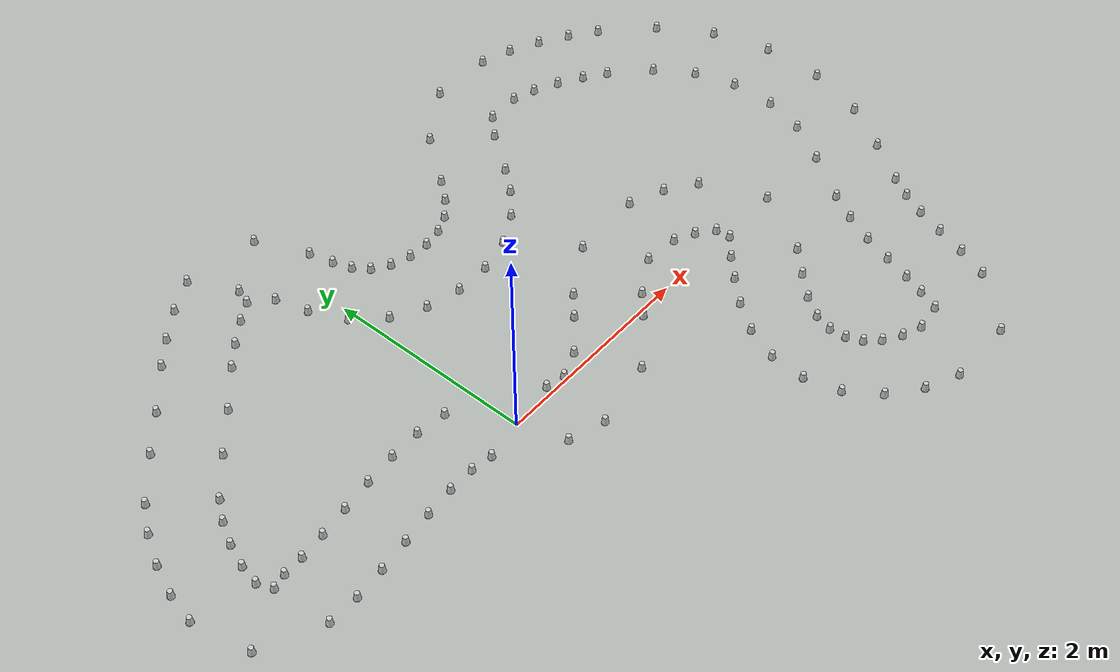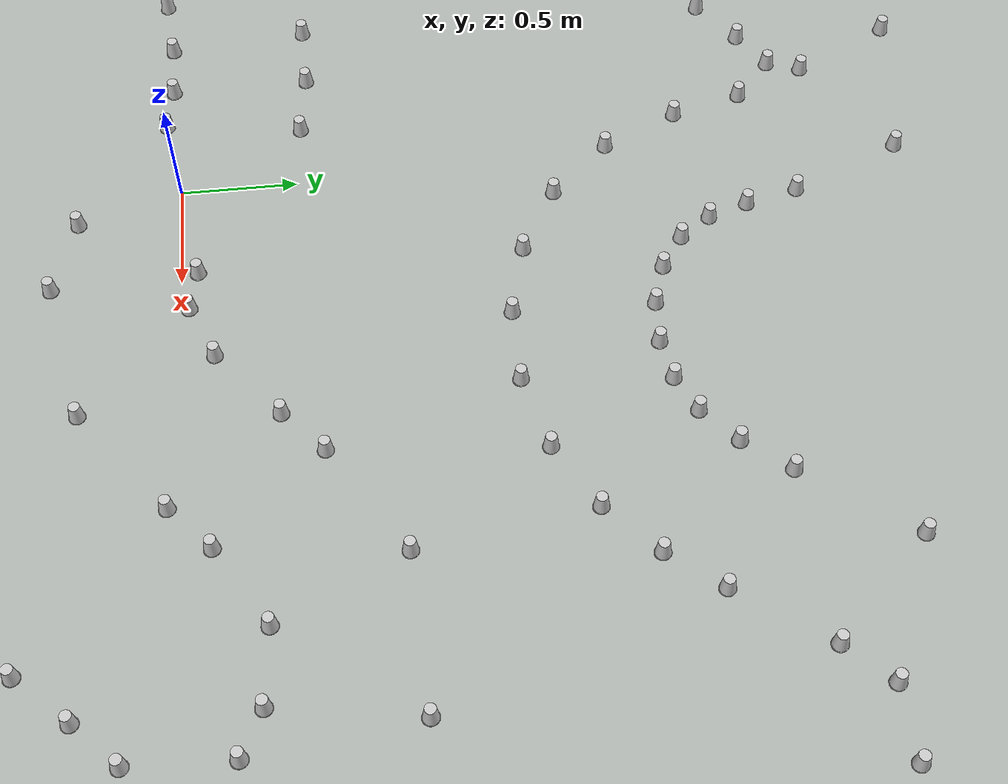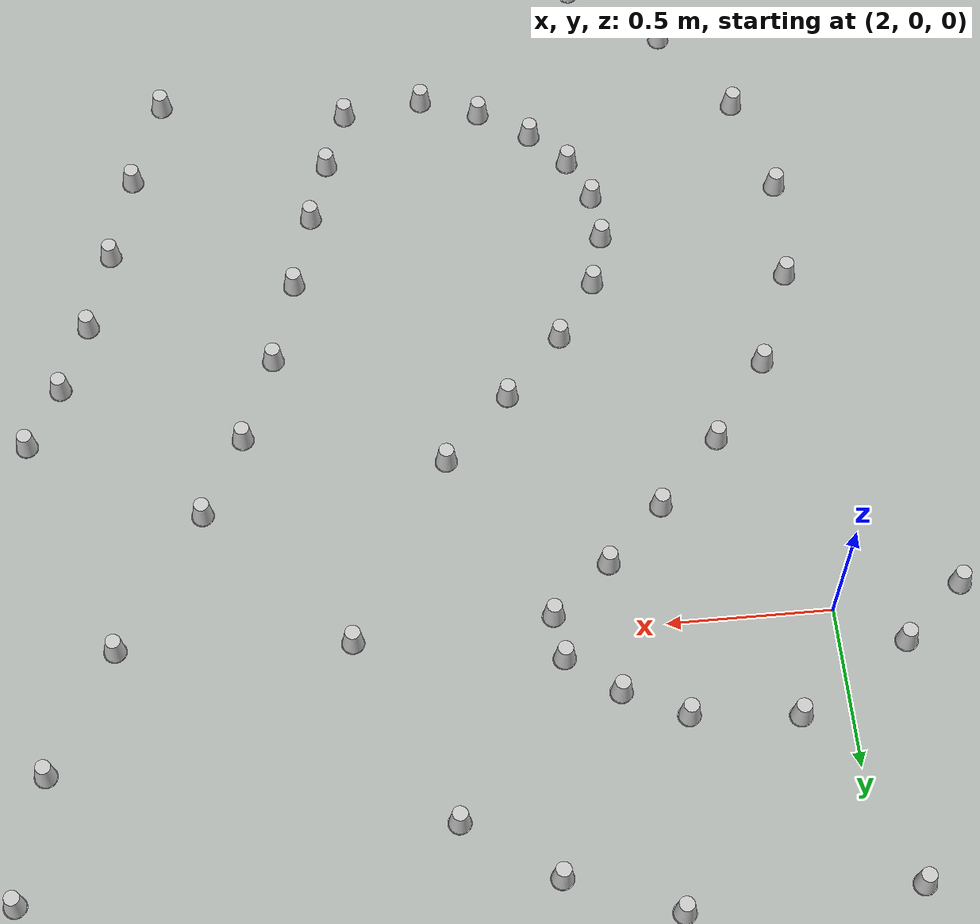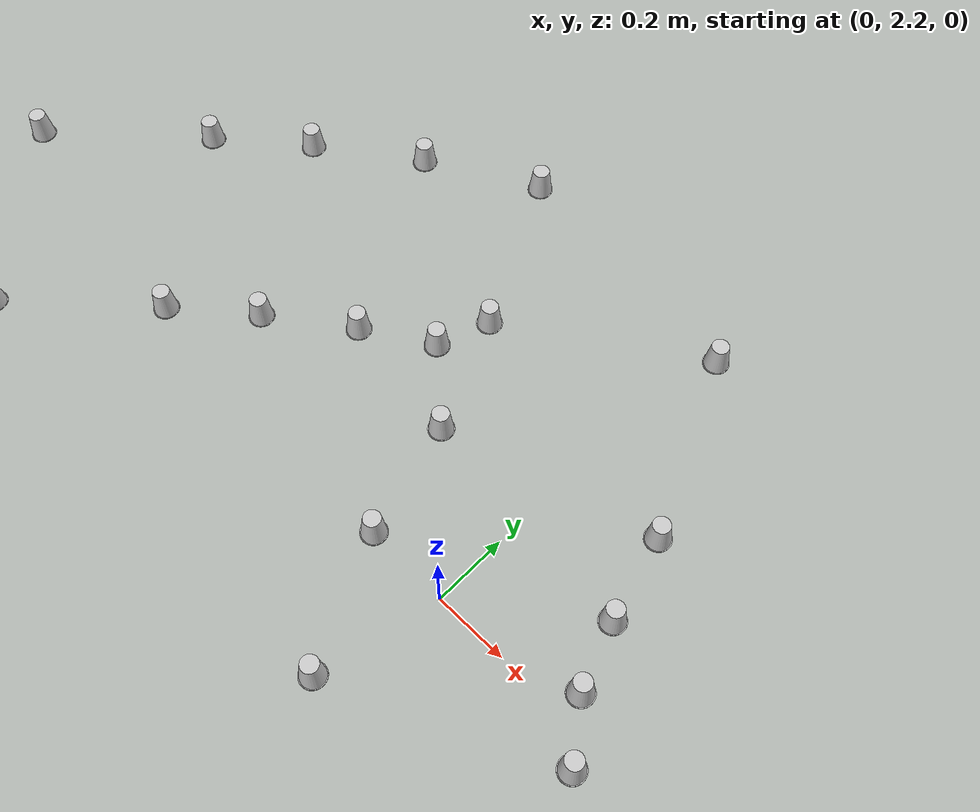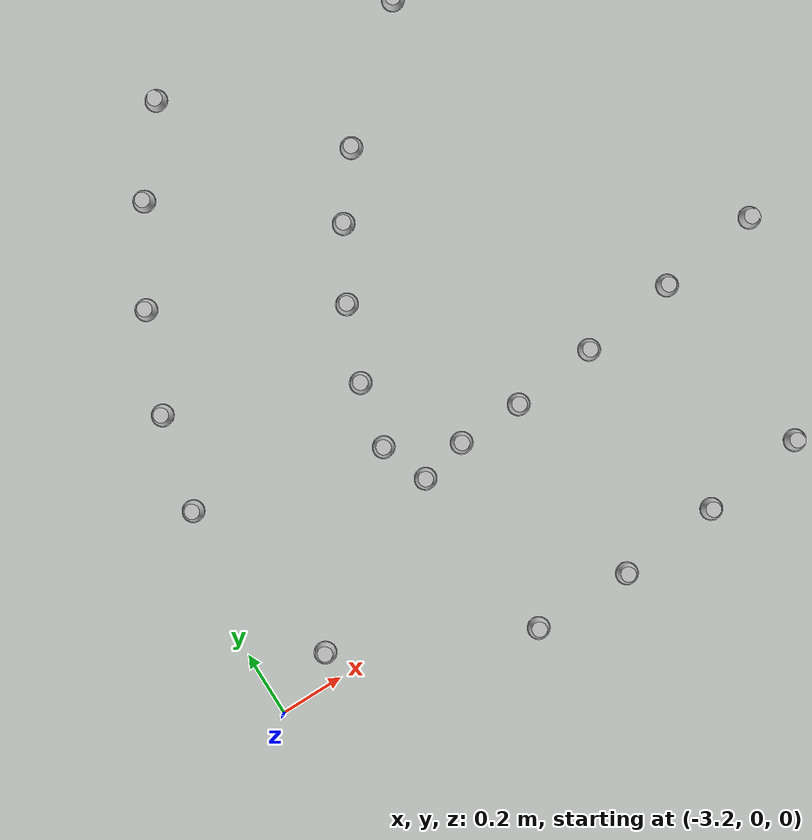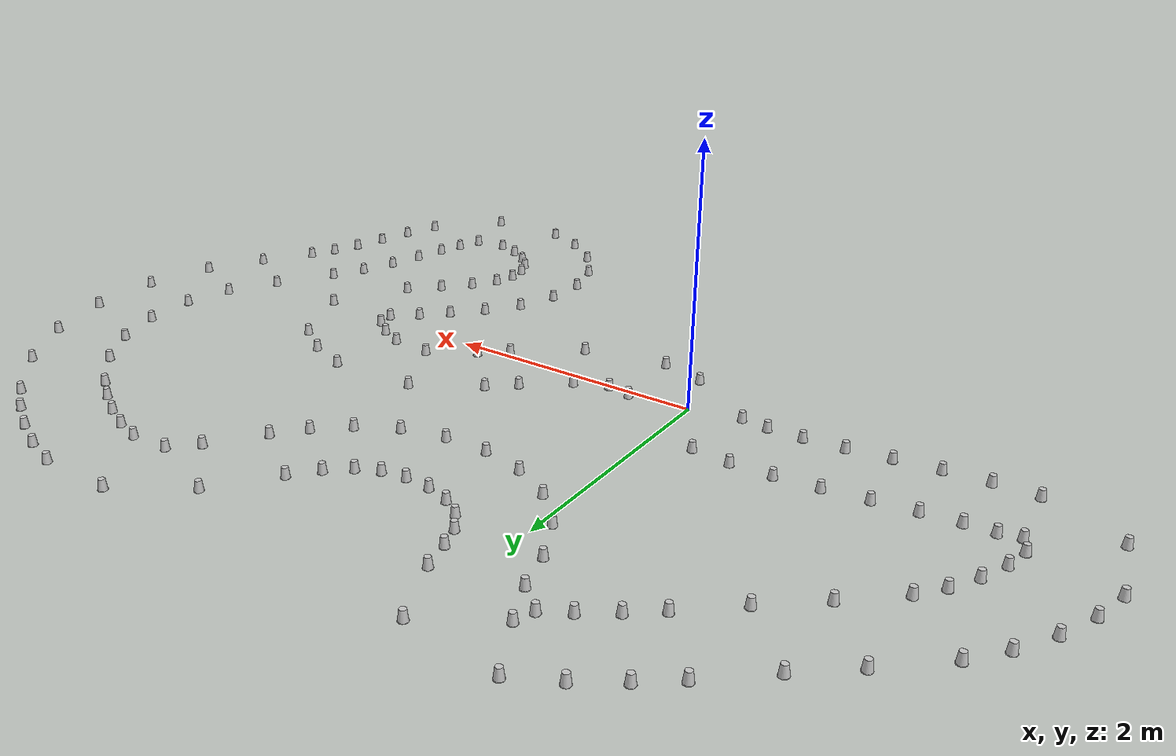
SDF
<?xml version='1.0' encoding='UTF-8'?>
<sdf version="1.4">
  <model name="some track">
    <include>
      <uri>model://cone_yellow</uri>
      <pose>0.1489336183060824 -0.44300287853696574 0 0 0 0</pose>
      <name>cone_right_0</name>
    </include>
    <include>
      <uri>model://cone_yellow</uri>
      <pose>0.4961058259654692 -0.5475535411759783 0 0 0 0</pose>
      <name>cone_right_1</name>
    </include>
    <include>
      <uri>model://cone_yellow</uri>
      <pose>1.143389940291274 -0.41314071276345354 0 0 0 0</pose>
      <name>cone_right_2</name>
    </include>
    <include>
      <uri>model://cone_yellow</uri>
      <pose>1.6082141276221864 -0.05322173094856836 0 0 0 0</pose>
      <name>cone_right_3</name>
    </include>
    <include>
      <uri>model://cone_yellow</uri>
      <pose>1.8004159025532567 0.11803156032722686 0 0 0 0</pose>
      <name>cone_right_4</name>
    </include>
    <include>
      <uri>model://cone_yellow</uri>
      <pose>2.1482045290976117 0.3281635064460478 0 0 0 0</pose>
      <name>cone_right_5</name>
    </include>
    <include>
      <uri>model://cone_yellow</uri>
      <pose>2.4719852008696024 0.2977196626529633 0 0 0 0</pose>
      <name>cone_right_6</name>
    </include>
    <include>
      <uri>model://cone_yellow</uri>
      <pose>2.659545496556401 0.2072793361485376 0 0 0 0</pose>
      <name>cone_right_7</name>
    </include>
    <include>
      <uri>model://cone_yellow</uri>
      <pose>2.812567849398796 0.08466833445198363 0 0 0 0</pose>
      <name>cone_right_8</name>
    </include>
    <include>
      <uri>model://cone_yellow</uri>
      <pose>2.829410620428896 -0.054709885694480535 0 0 0 0</pose>
      <name>cone_right_9</name>
    </include>
    <include>
      <uri>model://cone_yellow</uri>
      <pose>2.6450896221451763 -0.2119712804292854 0 0 0 0</pose>
      <name>cone_right_10</name>
    </include>
    <include>
      <uri>model://cone_yellow</uri>
      <pose>2.4631346648143655 -0.3924107468708467 0 0 0 0</pose>
      <name>cone_right_11</name>
    </include>
    <include>
      <uri>model://cone_yellow</uri>
      <pose>2.261539616022338 -0.6092099492027743 0 0 0 0</pose>
      <name>cone_right_12</name>
    </include>
    <include>
      <uri>model://cone_yellow</uri>
      <pose>2.0791331525641312 -0.8689175100532496 0 0 0 0</pose>
      <name>cone_right_13</name>
    </include>
    <include>
      <uri>model://cone_yellow</uri>
      <pose>1.9584969333145956 -1.1857725263795265 0 0 0 0</pose>
      <name>cone_right_14</name>
    </include>
    <include>
      <uri>model://cone_yellow</uri>
      <pose>1.93836008617517 -1.5297882584963889 0 0 0 0</pose>
      <name>cone_right_15</name>
    </include>
    <include>
      <uri>model://cone_yellow</uri>
      <pose>2.0299808322788264 -1.865438898609131 0 0 0 0</pose>
      <name>cone_right_16</name>
    </include>
    <include>
      <uri>model://cone_yellow</uri>
      <pose>2.233735734013372 -2.162673669375936 0 0 0 0</pose>
      <name>cone_right_17</name>
    </include>
    <include>
      <uri>model://cone_yellow</uri>
      <pose>2.5140119469291746 -2.3855293772590107 0 0 0 0</pose>
      <name>cone_right_18</name>
    </include>
    <include>
      <uri>model://cone_yellow</uri>
      <pose>2.8252043664206097 -2.5249795685237855 0 0 0 0</pose>
      <name>cone_right_19</name>
    </include>
    <include>
      <uri>model://cone_yellow</uri>
      <pose>3.464534024378212 -2.5160900270946964 0 0 0 0</pose>
      <name>cone_right_20</name>
    </include>
    <include>
      <uri>model://cone_yellow</uri>
      <pose>3.9132222028055033 -2.0261816710607063 0 0 0 0</pose>
      <name>cone_right_21</name>
    </include>
    <include>
      <uri>model://cone_yellow</uri>
      <pose>4.018035063090451 -1.7341791673116578 0 0 0 0</pose>
      <name>cone_right_22</name>
    </include>
    <include>
      <uri>model://cone_yellow</uri>
      <pose>4.098568054624938 -1.4491607143392524 0 0 0 0</pose>
      <name>cone_right_23</name>
    </include>
    <include>
      <uri>model://cone_yellow</uri>
      <pose>4.1780107869248635 -1.186826801697169 0 0 0 0</pose>
      <name>cone_right_24</name>
    </include>
    <include>
      <uri>model://cone_yellow</uri>
      <pose>4.269759827451156 -0.9660469356231087 0 0 0 0</pose>
      <name>cone_right_25</name>
    </include>
    <include>
      <uri>model://cone_yellow</uri>
      <pose>4.377039143867677 -0.7722904045049392 0 0 0 0</pose>
      <name>cone_right_26</name>
    </include>
    <include>
      <uri>model://cone_yellow</uri>
      <pose>4.627654830196301 -0.3888375269489559 0 0 0 0</pose>
      <name>cone_right_27</name>
    </include>
    <include>
      <uri>model://cone_yellow</uri>
      <pose>4.8743602125586 0.049470663569166906 0 0 0 0</pose>
      <name>cone_right_28</name>
    </include>
    <include>
      <uri>model://cone_yellow</uri>
      <pose>5.022041420340208 0.5952909064174535 0 0 0 0</pose>
      <name>cone_right_29</name>
    </include>
    <include>
      <uri>model://cone_yellow</uri>
      <pose>5.014222335812829 1.1697516215082069 0 0 0 0</pose>
      <name>cone_right_30</name>
    </include>
    <include>
      <uri>model://cone_yellow</uri>
      <pose>4.855803686270274 1.7101553811873746 0 0 0 0</pose>
      <name>cone_right_31</name>
    </include>
    <include>
      <uri>model://cone_yellow</uri>
      <pose>4.561304062637314 2.1857331319153213 0 0 0 0</pose>
      <name>cone_right_32</name>
    </include>
    <include>
      <uri>model://cone_yellow</uri>
      <pose>4.15653192658561 2.589136012595928 0 0 0 0</pose>
      <name>cone_right_33</name>
    </include>
    <include>
      <uri>model://cone_yellow</uri>
      <pose>3.920216375320221 2.7647983191233707 0 0 0 0</pose>
      <name>cone_right_34</name>
    </include>
    <include>
      <uri>model://cone_yellow</uri>
      <pose>3.664799047632815 2.9231939947591865 0 0 0 0</pose>
      <name>cone_right_35</name>
    </include>
    <include>
      <uri>model://cone_yellow</uri>
      <pose>3.394012451091313 3.057591452650709 0 0 0 0</pose>
      <name>cone_right_36</name>
    </include>
    <include>
      <uri>model://cone_yellow</uri>
      <pose>3.1126426830922376 3.156008139487125 0 0 0 0</pose>
      <name>cone_right_37</name>
    </include>
    <include>
      <uri>model://cone_yellow</uri>
      <pose>2.5266615233403504 3.1744840758729125 0 0 0 0</pose>
      <name>cone_right_38</name>
    </include>
    <include>
      <uri>model://cone_yellow</uri>
      <pose>2.010442761039095 2.828196702928457 0 0 0 0</pose>
      <name>cone_right_39</name>
    </include>
    <include>
      <uri>model://cone_yellow</uri>
      <pose>1.6783106127530223 2.383162259085812 0 0 0 0</pose>
      <name>cone_right_40</name>
    </include>
    <include>
      <uri>model://cone_yellow</uri>
      <pose>1.5248911421129703 2.1959174062796123 0 0 0 0</pose>
      <name>cone_right_41</name>
    </include>
    <include>
      <uri>model://cone_yellow</uri>
      <pose>1.3660452083004153 2.0588103827152073 0 0 0 0</pose>
      <name>cone_right_42</name>
    </include>
    <include>
      <uri>model://cone_yellow</uri>
      <pose>1.1991364917680107 1.983170483736218 0 0 0 0</pose>
      <name>cone_right_43</name>
    </include>
    <include>
      <uri>model://cone_yellow</uri>
      <pose>1.0138923557239221 1.9535644304571245 0 0 0 0</pose>
      <name>cone_right_44</name>
    </include>
    <include>
      <uri>model://cone_yellow</uri>
      <pose>0.8157801350424867 1.9668990147994365 0 0 0 0</pose>
      <name>cone_right_45</name>
    </include>
    <include>
      <uri>model://cone_yellow</uri>
      <pose>0.6293345010666918 2.026543169502637 0 0 0 0</pose>
      <name>cone_right_46</name>
    </include>
    <include>
      <uri>model://cone_yellow</uri>
      <pose>0.4785499684934528 2.1289558024850295 0 0 0 0</pose>
      <name>cone_right_47</name>
    </include>
    <include>
      <uri>model://cone_yellow</uri>
      <pose>0.3798200076577434 2.2661756594616134 0 0 0 0</pose>
      <name>cone_right_48</name>
    </include>
    <include>
      <uri>model://cone_yellow</uri>
      <pose>0.32044221759942015 2.441938430869973 0 0 0 0</pose>
      <name>cone_right_49</name>
    </include>
    <include>
      <uri>model://cone_yellow</uri>
      <pose>0.2623761882179354 2.6716046899462182 0 0 0 0</pose>
      <name>cone_right_50</name>
    </include>
    <include>
      <uri>model://cone_yellow</uri>
      <pose>0.05061904224355557 3.1561497723689786 0 0 0 0</pose>
      <name>cone_right_51</name>
    </include>
    <include>
      <uri>model://cone_yellow</uri>
      <pose>-0.6701420826647259 3.2598189202063232 0 0 0 0</pose>
      <name>cone_right_52</name>
    </include>
    <include>
      <uri>model://cone_yellow</uri>
      <pose>-0.9754652003140472 3.0994794236229457 0 0 0 0</pose>
      <name>cone_right_53</name>
    </include>
    <include>
      <uri>model://cone_yellow</uri>
      <pose>-1.245986022269268 2.910699342916729 0 0 0 0</pose>
      <name>cone_right_54</name>
    </include>
    <include>
      <uri>model://cone_yellow</uri>
      <pose>-1.477463758198162 2.7242773058116887 0 0 0 0</pose>
      <name>cone_right_55</name>
    </include>
    <include>
      <uri>model://cone_yellow</uri>
      <pose>-1.850462171199395 2.389045385256523 0 0 0 0</pose>
      <name>cone_right_56</name>
    </include>
    <include>
      <uri>model://cone_yellow</uri>
      <pose>-2.1849619871115773 2.1025829721194063 0 0 0 0</pose>
      <name>cone_right_57</name>
    </include>
    <include>
      <uri>model://cone_yellow</uri>
      <pose>-2.5621591308608673 1.7569256180275958 0 0 0 0</pose>
      <name>cone_right_58</name>
    </include>
    <include>
      <uri>model://cone_yellow</uri>
      <pose>-2.751502025673898 1.5197000656193125 0 0 0 0</pose>
      <name>cone_right_59</name>
    </include>
    <include>
      <uri>model://cone_yellow</uri>
      <pose>-2.9169635526407993 1.2403663921318198 0 0 0 0</pose>
      <name>cone_right_60</name>
    </include>
    <include>
      <uri>model://cone_yellow</uri>
      <pose>-3.0411661676113586 0.946798138425206 0 0 0 0</pose>
      <name>cone_right_61</name>
    </include>
    <include>
      <uri>model://cone_yellow</uri>
      <pose>-3.1134660624931207 0.6549686607328007 0 0 0 0</pose>
      <name>cone_right_62</name>
    </include>
    <include>
      <uri>model://cone_yellow</uri>
      <pose>-3.0004310747995735 0.08737273432990295 0 0 0 0</pose>
      <name>cone_right_63</name>
    </include>
    <include>
      <uri>model://cone_yellow</uri>
      <pose>-2.4197867869377956 -0.18558733563891414 0 0 0 0</pose>
      <name>cone_right_64</name>
    </include>
    <include>
      <uri>model://cone_yellow</uri>
      <pose>-2.1094552380465235 -0.1853718506617037 0 0 0 0</pose>
      <name>cone_right_65</name>
    </include>
    <include>
      <uri>model://cone_yellow</uri>
      <pose>-1.7932557812733294 -0.15436390553005175 0 0 0 0</pose>
      <name>cone_right_66</name>
    </include>
    <include>
      <uri>model://cone_yellow</uri>
      <pose>-1.4731474902093344 -0.11080089493017481 0 0 0 0</pose>
      <name>cone_right_67</name>
    </include>
    <include>
      <uri>model://cone_yellow</uri>
      <pose>-1.1580732380460685 -0.06839491599028863 0 0 0 0</pose>
      <name>cone_right_68</name>
    </include>
    <include>
      <uri>model://cone_yellow</uri>
      <pose>-0.8608900658670848 -0.039703682886665814 0 0 0 0</pose>
      <name>cone_right_69</name>
    </include>
    <include>
      <uri>model://cone_yellow</uri>
      <pose>-0.5976723555438991 -0.03630563014765681 0 0 0 0</pose>
      <name>cone_right_70</name>
    </include>
    <include>
      <uri>model://cone_yellow</uri>
      <pose>-0.3885750777540149 -0.06691995059412884 0 0 0 0</pose>
      <name>cone_right_71</name>
    </include>
    <include>
      <uri>model://cone_blue</uri>
      <pose>0.46229635602922725 0.06866478177259053 0 0 0 0</pose>
      <name>cone_left_0</name>
    </include>
    <include>
      <uri>model://cone_blue</uri>
      <pose>0.6488859623974419 0.032669028112590315 0 0 0 0</pose>
      <name>cone_left_1</name>
    </include>
    <include>
      <uri>model://cone_blue</uri>
      <pose>0.8995664969080154 0.1350838110009717 0 0 0 0</pose>
      <name>cone_left_2</name>
    </include>
    <include>
      <uri>model://cone_blue</uri>
      <pose>1.211370822295549 0.3967953698569778 0 0 0 0</pose>
      <name>cone_left_3</name>
    </include>
    <include>
      <uri>model://cone_blue</uri>
      <pose>1.4012606912446648 0.5659993239946511 0 0 0 0</pose>
      <name>cone_left_4</name>
    </include>
    <include>
      <uri>model://cone_blue</uri>
      <pose>1.8837670046329844 0.8667475719873705 0 0 0 0</pose>
      <name>cone_left_5</name>
    </include>
    <include>
      <uri>model://cone_blue</uri>
      <pose>2.5682627490539045 0.8899448172315403 0 0 0 0</pose>
      <name>cone_left_6</name>
    </include>
    <include>
      <uri>model://cone_blue</uri>
      <pose>2.896638448634202 0.7584480327152361 0 0 0 0</pose>
      <name>cone_left_7</name>
    </include>
    <include>
      <uri>model://cone_blue</uri>
      <pose>3.168703905968402 0.5675421370247163 0 0 0 0</pose>
      <name>cone_left_8</name>
    </include>
    <include>
      <uri>model://cone_blue</uri>
      <pose>3.4284783266507413 -0.021275122915353682 0 0 0 0</pose>
      <name>cone_left_9</name>
    </include>
    <include>
      <uri>model://cone_blue</uri>
      <pose>3.0975903251720696 -0.6059803079402892 0 0 0 0</pose>
      <name>cone_left_10</name>
    </include>
    <include>
      <uri>model://cone_blue</uri>
      <pose>2.8868503020585825 -0.8172225390267693 0 0 0 0</pose>
      <name>cone_left_11</name>
    </include>
    <include>
      <uri>model://cone_blue</uri>
      <pose>2.70123559658448 -1.017459192530299 0 0 0 0</pose>
      <name>cone_left_12</name>
    </include>
    <include>
      <uri>model://cone_blue</uri>
      <pose>2.5735766918699023 -1.2088080607291727 0 0 0 0</pose>
      <name>cone_left_13</name>
    </include>
    <include>
      <uri>model://cone_blue</uri>
      <pose>2.525817572031623 -1.3810858461652094 0 0 0 0</pose>
      <name>cone_left_14</name>
    </include>
    <include>
      <uri>model://cone_blue</uri>
      <pose>2.5382901359668772 -1.5389498826383898 0 0 0 0</pose>
      <name>cone_left_15</name>
    </include>
    <include>
      <uri>model://cone_blue</uri>
      <pose>2.600949046212679 -1.6810607581553707 0 0 0 0</pose>
      <name>cone_left_16</name>
    </include>
    <include>
      <uri>model://cone_blue</uri>
      <pose>2.7124099668221353 -1.8009127278068637 0 0 0 0</pose>
      <name>cone_left_17</name>
    </include>
    <include>
      <uri>model://cone_blue</uri>
      <pose>2.8712491026061957 -1.9034696147774364 0 0 0 0</pose>
      <name>cone_left_18</name>
    </include>
    <include>
      <uri>model://cone_blue</uri>
      <pose>3.0564317674409036 -1.9713245414379656 0 0 0 0</pose>
      <name>cone_left_19</name>
    </include>
    <include>
      <uri>model://cone_blue</uri>
      <pose>3.312186918372557 -1.935753608030976 0 0 0 0</pose>
      <name>cone_left_20</name>
    </include>
    <include>
      <uri>model://cone_blue</uri>
      <pose>3.385466511432841 -1.7407452854618084 0 0 0 0</pose>
      <name>cone_left_21</name>
    </include>
    <include>
      <uri>model://cone_blue</uri>
      <pose>3.4507251843415747 -1.5388345961714938 0 0 0 0</pose>
      <name>cone_left_22</name>
    </include>
    <include>
      <uri>model://cone_blue</uri>
      <pose>3.520897587266747 -1.2869977372385304 0 0 0 0</pose>
      <name>cone_left_23</name>
    </include>
    <include>
      <uri>model://cone_blue</uri>
      <pose>3.6037256829169837 -1.0130550568286232 0 0 0 0</pose>
      <name>cone_left_24</name>
    </include>
    <include>
      <uri>model://cone_blue</uri>
      <pose>3.71441916149909 -0.7388977671458385 0 0 0 0</pose>
      <name>cone_left_25</name>
    </include>
    <include>
      <uri>model://cone_blue</uri>
      <pose>3.84979486332235 -0.4859104669530198 0 0 0 0</pose>
      <name>cone_left_26</name>
    </include>
    <include>
      <uri>model://cone_blue</uri>
      <pose>4.128195623139135 -0.056361211272445894 0 0 0 0</pose>
      <name>cone_left_27</name>
    </include>
    <include>
      <uri>model://cone_blue</uri>
      <pose>4.338786106956456 0.31995241417068687 0 0 0 0</pose>
      <name>cone_left_28</name>
    </include>
    <include>
      <uri>model://cone_blue</uri>
      <pose>4.431694829268985 0.7024865332433045 0 0 0 0</pose>
      <name>cone_left_29</name>
    </include>
    <include>
      <uri>model://cone_blue</uri>
      <pose>4.416611880610339 1.1162563522531332 0 0 0 0</pose>
      <name>cone_left_30</name>
    </include>
    <include>
      <uri>model://cone_blue</uri>
      <pose>4.29543990265919 1.4956969236319055 0 0 0 0</pose>
      <name>cone_left_31</name>
    </include>
    <include>
      <uri>model://cone_blue</uri>
      <pose>4.075242920984486 1.833959672747137 0 0 0 0</pose>
      <name>cone_left_32</name>
    </include>
    <include>
      <uri>model://cone_blue</uri>
      <pose>3.7580315676228544 2.140585609735163 0 0 0 0</pose>
      <name>cone_left_33</name>
    </include>
    <include>
      <uri>model://cone_blue</uri>
      <pose>3.564324294845785 2.2817446709065528 0 0 0 0</pose>
      <name>cone_left_34</name>
    </include>
    <include>
      <uri>model://cone_blue</uri>
      <pose>3.3503501963413957 2.412193094641088 0 0 0 0</pose>
      <name>cone_left_35</name>
    </include>
    <include>
      <uri>model://cone_blue</uri>
      <pose>3.1296972415337225 2.5189473493723686 0 0 0 0</pose>
      <name>cone_left_36</name>
    </include>
    <include>
      <uri>model://cone_blue</uri>
      <pose>2.91920970945136 2.5880436294088565 0 0 0 0</pose>
      <name>cone_left_37</name>
    </include>
    <include>
      <uri>model://cone_blue</uri>
      <pose>2.606769491961475 2.5798558614705036 0 0 0 0</pose>
      <name>cone_left_38</name>
    </include>
    <include>
      <uri>model://cone_blue</uri>
      <pose>2.4343996935704615 2.4036257202193294 0 0 0 0</pose>
      <name>cone_left_39</name>
    </include>
    <include>
      <uri>model://cone_blue</uri>
      <pose>2.1661843863563837 2.0339070786947175 0 0 0 0</pose>
      <name>cone_left_40</name>
    </include>
    <include>
      <uri>model://cone_blue</uri>
      <pose>1.9899237615104333 1.8167806725062488 0 0 0 0</pose>
      <name>cone_left_41</name>
    </include>
    <include>
      <uri>model://cone_blue</uri>
      <pose>1.766026849944775 1.6115803676810163 0 0 0 0</pose>
      <name>cone_left_42</name>
    </include>
    <include>
      <uri>model://cone_blue</uri>
      <pose>1.4747981811134243 1.450244003790595 0 0 0 0</pose>
      <name>cone_left_43</name>
    </include>
    <include>
      <uri>model://cone_blue</uri>
      <pose>1.141169124141252 1.3672192895876523 0 0 0 0</pose>
      <name>cone_left_44</name>
    </include>
    <include>
      <uri>model://cone_blue</uri>
      <pose>0.8010750975494612 1.367079240306857 0 0 0 0</pose>
      <name>cone_left_45</name>
    </include>
    <include>
      <uri>model://cone_blue</uri>
      <pose>0.4719791485415561 1.4475446435704111 0 0 0 0</pose>
      <name>cone_left_46</name>
    </include>
    <include>
      <uri>model://cone_blue</uri>
      <pose>0.17188448096711123 1.6132463118216998 0 0 0 0</pose>
      <name>cone_left_47</name>
    </include>
    <include>
      <uri>model://cone_blue</uri>
      <pose>-0.07360712206100681 1.8732331216332236 0 0 0 0</pose>
      <name>cone_left_48</name>
    </include>
    <include>
      <uri>model://cone_blue</uri>
      <pose>-0.23141687927932397 2.2064569301269703 0 0 0 0</pose>
      <name>cone_left_49</name>
    </include>
    <include>
      <uri>model://cone_blue</uri>
      <pose>-0.317376472996721 2.517050971729788 0 0 0 0</pose>
      <name>cone_left_50</name>
    </include>
    <include>
      <uri>model://cone_blue</uri>
      <pose>-0.45338200415600144 2.830599553158253 0 0 0 0</pose>
      <name>cone_left_51</name>
    </include>
    <include>
      <uri>model://cone_blue</uri>
      <pose>-0.502252487291544 2.68378673033719 0 0 0 0</pose>
      <name>cone_left_52</name>
    </include>
    <include>
      <uri>model://cone_blue</uri>
      <pose>-0.6853125439133478 2.5743018955587513 0 0 0 0</pose>
      <name>cone_left_53</name>
    </include>
    <include>
      <uri>model://cone_blue</uri>
      <pose>-0.8999219880706986 2.420556828708656 0 0 0 0</pose>
      <name>cone_left_54</name>
    </include>
    <include>
      <uri>model://cone_blue</uri>
      <pose>-1.1001155964371485 2.2577921883474934 0 0 0 0</pose>
      <name>cone_left_55</name>
    </include>
    <include>
      <uri>model://cone_blue</uri>
      <pose>-1.4448294335142506 1.9469344465566814 0 0 0 0</pose>
      <name>cone_left_56</name>
    </include>
    <include>
      <uri>model://cone_blue</uri>
      <pose>-1.8027894476198556 1.6400420008979926 0 0 0 0</pose>
      <name>cone_left_57</name>
    </include>
    <include>
      <uri>model://cone_blue</uri>
      <pose>-2.1405605466355846 1.330012706792486 0 0 0 0</pose>
      <name>cone_left_58</name>
    </include>
    <include>
      <uri>model://cone_blue</uri>
      <pose>-2.2796470066147823 1.149088623555362 0 0 0 0</pose>
      <name>cone_left_59</name>
    </include>
    <include>
      <uri>model://cone_blue</uri>
      <pose>-2.397985845885143 0.9392648479799507 0 0 0 0</pose>
      <name>cone_left_60</name>
    </include>
    <include>
      <uri>model://cone_blue</uri>
      <pose>-2.4866363142685377 0.7176766820934395 0 0 0 0</pose>
      <name>cone_left_61</name>
    </include>
    <include>
      <uri>model://cone_blue</uri>
      <pose>-2.5292370819898116 0.5183066750159839 0 0 0 0</pose>
      <name>cone_left_62</name>
    </include>
    <include>
      <uri>model://cone_blue</uri>
      <pose>-2.4723420343765214 0.37219191448647093 0 0 0 0</pose>
      <name>cone_left_63</name>
    </include>
    <include>
      <uri>model://cone_blue</uri>
      <pose>-2.324256356561865 0.4067587936404029 0 0 0 0</pose>
      <name>cone_left_64</name>
    </include>
    <include>
      <uri>model://cone_blue</uri>
      <pose>-2.1187743009288926 0.41455577419565726 0 0 0 0</pose>
      <name>cone_left_65</name>
    </include>
    <include>
      <uri>model://cone_blue</uri>
      <pose>-1.8538817409193014 0.4425653139063944 0 0 0 0</pose>
      <name>cone_left_66</name>
    </include>
    <include>
      <uri>model://cone_blue</uri>
      <pose>-1.5543851045910921 0.4836740414713196 0 0 0 0</pose>
      <name>cone_left_67</name>
    </include>
    <include>
      <uri>model://cone_blue</uri>
      <pose>-1.238107020401864 0.5262432880311358 0 0 0 0</pose>
      <name>cone_left_68</name>
    </include>
    <include>
      <uri>model://cone_blue</uri>
      <pose>-0.9189559489171608 0.5574800017746073 0 0 0 0</pose>
      <name>cone_left_69</name>
    </include>
    <include>
      <uri>model://cone_blue</uri>
      <pose>-0.6076230099146004 0.5636118512425714 0 0 0 0</pose>
      <name>cone_left_70</name>
    </include>
    <include>
      <uri>model://cone_blue</uri>
      <pose>-0.31071873436577835 0.5280072632683848 0 0 0 0</pose>
      <name>cone_left_71</name>
    </include>

  </model>
</sdf>

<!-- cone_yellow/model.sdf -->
<sdf version='1.4'>
  <model name="cone_yellow">
    <link name="link">
    <collision name="collision"><geometry><box><size> 0.05 0.05 0.01</size>
             </box></geometry></collision>
      <visual name="visual">
        <geometry>
          <mesh>
            <uri>model://cup.dae</uri>
            <scale>1 1 1</scale>
          </mesh>
        </geometry>
        <material>
            <script>
              <uri>model://cone_yellow/materials/scripts</uri>
              <uri>model://cone_yellow/materials/textures</uri>
              <name>cone_yellow/Image</name>
            </script>
        </material>
      </visual>
    </link>
  </model>
</sdf>

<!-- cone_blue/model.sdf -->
<sdf version='1.4'>
  <model name="cone_blue">
    <link name="link">
    <collision name="collision"><geometry><box><size> 0.05 0.05 0.01</size>
             </box></geometry></collision>
      <visual name="visual">
        <geometry>
          <mesh>
            <uri>model://cup.dae</uri>
            <scale>1 1 1</scale>
          </mesh>
        </geometry>
        <material>
            <script>
              <uri>model://cone_blue/materials/scripts</uri>
              <uri>model://cone_blue/materials/textures</uri>
              <name>cone_blue/Image</name>
            </script>
        </material>
      </visual>
    </link>
  </model>
</sdf>
